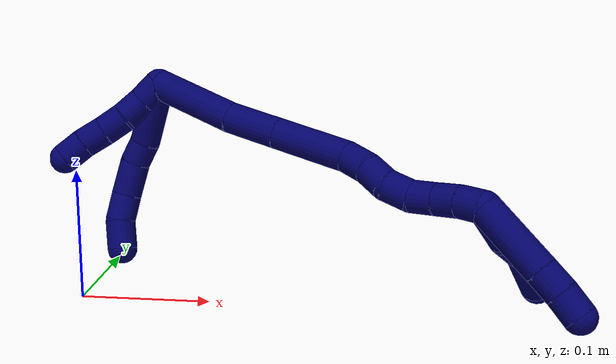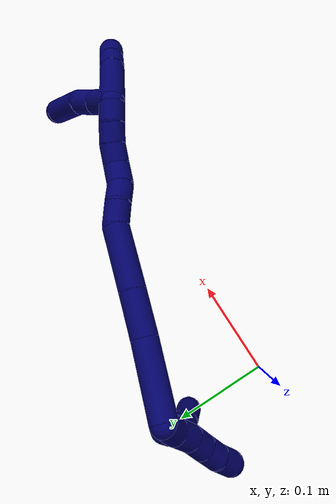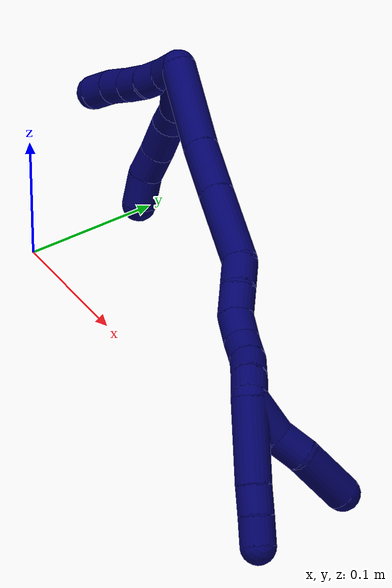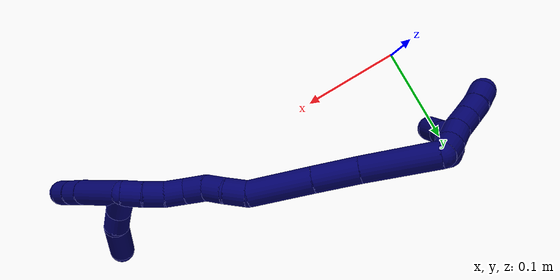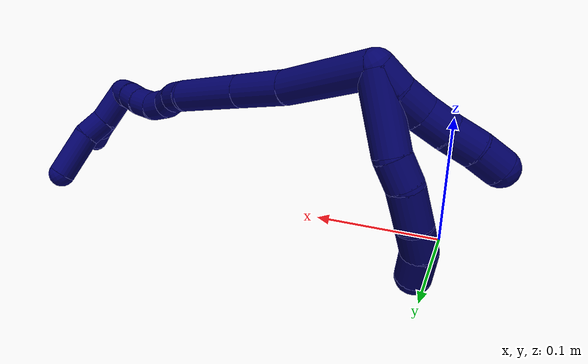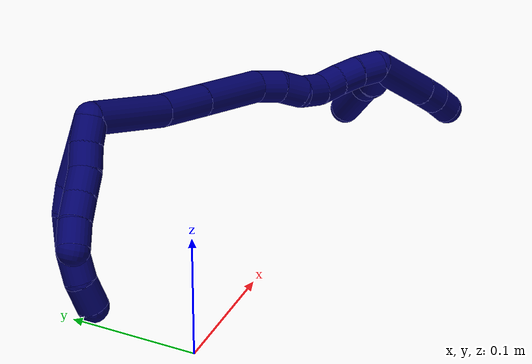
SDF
<sdf version="1.7">
 <world name="default">
  <model name="7">
   <static>0</static>
   <link name="7">
    <collision name="collision-cylinder-e_1_2_8">
     <pose>0.006094 0.005911 -0.025557 -2.91431 0.228263 -1.57514</pose>
     <geometry><cylinder><radius>0.0125</radius><length>0.053861</length></cylinder></geometry>
     <surface>
      <friction><ode><mu>1.16</mu><mu2>1.16</mu2><slip1>0</slip1><slip2>0</slip2></ode></friction>
      <contact><ode><kp>1e+06</kp><kd>1</kd><max_vel>0</max_vel><min_depth>0.001</min_depth></ode></contact>
     </surface>
    </collision>
    <visual name="visual-cylinder-e_1_2_8">
     <pose>0.006094 0.005911 -0.025557 -2.91431 0.228263 -1.57514</pose>
     <geometry><cylinder><radius>0.0125</radius><length>0.053861</length></cylinder></geometry>
     <material><ambient>0.003922 0 0.403922 1</ambient></material>
    </visual>
    <collision name="collision-cylinder-e_2_8_9">
     <pose>0.013157 0.011729 -0.061262 3.13247 0.095204 2.95066</pose>
     <geometry><cylinder><radius>0.0125</radius><length>0.020389</length></cylinder></geometry>
     <surface>
      <friction><ode><mu>1.16</mu><mu2>1.16</mu2><slip1>0</slip1><slip2>0</slip2></ode></friction>
      <contact><ode><kp>1e+06</kp><kd>1</kd><max_vel>0</max_vel><min_depth>0.001</min_depth></ode></contact>
     </surface>
    </collision>
    <visual name="visual-cylinder-e_2_8_9">
     <pose>0.013157 0.011729 -0.061262 3.13247 0.095204 2.95066</pose>
     <geometry><cylinder><radius>0.0125</radius><length>0.020389</length></cylinder></geometry>
     <material><ambient>0.003922 0 0.403922 1</ambient></material>
    </visual>
    <collision name="collision-cylinder-e_3_9_10">
     <pose>0.018615 0.009688 -0.085083 3 0.314231 2.29984</pose>
     <geometry><cylinder><radius>0.0125</radius><length>0.029044</length></cylinder></geometry>
     <surface>
      <friction><ode><mu>1.16</mu><mu2>1.16</mu2><slip1>0</slip1><slip2>0</slip2></ode></friction>
      <contact><ode><kp>1e+06</kp><kd>1</kd><max_vel>0</max_vel><min_depth>0.001</min_depth></ode></contact>
     </surface>
    </collision>
    <visual name="visual-cylinder-e_3_9_10">
     <pose>0.018615 0.009688 -0.085083 3 0.314231 2.29984</pose>
     <geometry><cylinder><radius>0.0125</radius><length>0.029044</length></cylinder></geometry>
     <material><ambient>0.003922 0 0.403922 1</ambient></material>
    </visual>
    <collision name="collision-cylinder-e_4_10_11">
     <pose>0.027263 0.00456 -0.108748 2.83358 0.377638 1.77716</pose>
     <geometry><cylinder><radius>0.0125</radius><length>0.022561</length></cylinder></geometry>
     <surface>
      <friction><ode><mu>1.16</mu><mu2>1.16</mu2><slip1>0</slip1><slip2>0</slip2></ode></friction>
      <contact><ode><kp>1e+06</kp><kd>1</kd><max_vel>0</max_vel><min_depth>0.001</min_depth></ode></contact>
     </surface>
    </collision>
    <visual name="visual-cylinder-e_4_10_11">
     <pose>0.027263 0.00456 -0.108748 2.83358 0.377638 1.77716</pose>
     <geometry><cylinder><radius>0.0125</radius><length>0.022561</length></cylinder></geometry>
     <material><ambient>0.003922 0 0.403922 1</ambient></material>
    </visual>
    <collision name="collision-cylinder-e_5_11_6">
     <pose>0.039075 -0.001381 -0.12766 2.84135 0.68662 2.341</pose>
     <geometry><cylinder><radius>0.0125</radius><length>0.024145</length></cylinder></geometry>
     <surface>
      <friction><ode><mu>1.16</mu><mu2>1.16</mu2><slip1>0</slip1><slip2>0</slip2></ode></friction>
      <contact><ode><kp>1e+06</kp><kd>1</kd><max_vel>0</max_vel><min_depth>0.001</min_depth></ode></contact>
     </surface>
    </collision>
    <visual name="visual-cylinder-e_5_11_6">
     <pose>0.039075 -0.001381 -0.12766 2.84135 0.68662 2.341</pose>
     <geometry><cylinder><radius>0.0125</radius><length>0.024145</length></cylinder></geometry>
     <material><ambient>0.003922 0 0.403922 1</ambient></material>
    </visual>
    <collision name="collision-cylinder-e_1_2_12">
     <pose>-0.001913 -0.001334 -0.009724 3.00528 -0.192446 -1.91047</pose>
     <geometry><cylinder><radius>0.0125</radius><length>0.02</length></cylinder></geometry>
     <surface>
      <friction><ode><mu>1.16</mu><mu2>1.16</mu2><slip1>0</slip1><slip2>0</slip2></ode></friction>
      <contact><ode><kp>1e+06</kp><kd>1</kd><max_vel>0</max_vel><min_depth>0.001</min_depth></ode></contact>
     </surface>
    </collision>
    <visual name="visual-cylinder-e_1_2_12">
     <pose>-0.001913 -0.001334 -0.009724 3.00528 -0.192446 -1.91047</pose>
     <geometry><cylinder><radius>0.0125</radius><length>0.02</length></cylinder></geometry>
     <material><ambient>0.003922 0 0.403922 1</ambient></material>
    </visual>
    <collision name="collision-cylinder-e_2_12_13">
     <pose>-0.00624 -0.005866 -0.028611 2.80577 -0.243921 -1.25211</pose>
     <geometry><cylinder><radius>0.0125</radius><length>0.02</length></cylinder></geometry>
     <surface>
      <friction><ode><mu>1.16</mu><mu2>1.16</mu2><slip1>0</slip1><slip2>0</slip2></ode></friction>
      <contact><ode><kp>1e+06</kp><kd>1</kd><max_vel>0</max_vel><min_depth>0.001</min_depth></ode></contact>
     </surface>
    </collision>
    <visual name="visual-cylinder-e_2_12_13">
     <pose>-0.00624 -0.005866 -0.028611 2.80577 -0.243921 -1.25211</pose>
     <geometry><cylinder><radius>0.0125</radius><length>0.02</length></cylinder></geometry>
     <material><ambient>0.003922 0 0.403922 1</ambient></material>
    </visual>
    <collision name="collision-cylinder-e_3_13_14">
     <pose>-0.012367 -0.011177 -0.046814 2.91198 -0.380279 -2.06203</pose>
     <geometry><cylinder><radius>0.0125</radius><length>0.02</length></cylinder></geometry>
     <surface>
      <friction><ode><mu>1.16</mu><mu2>1.16</mu2><slip1>0</slip1><slip2>0</slip2></ode></friction>
      <contact><ode><kp>1e+06</kp><kd>1</kd><max_vel>0</max_vel><min_depth>0.001</min_depth></ode></contact>
     </surface>
    </collision>
    <visual name="visual-cylinder-e_3_13_14">
     <pose>-0.012367 -0.011177 -0.046814 2.91198 -0.380279 -2.06203</pose>
     <geometry><cylinder><radius>0.0125</radius><length>0.02</length></cylinder></geometry>
     <material><ambient>0.003922 0 0.403922 1</ambient></material>
    </visual>
    <collision name="collision-cylinder-e_4_14_15">
     <pose>-0.02022 -0.01581 -0.064603 2.86106 -0.426913 -1.98689</pose>
     <geometry><cylinder><radius>0.0125</radius><length>0.02</length></cylinder></geometry>
     <surface>
      <friction><ode><mu>1.16</mu><mu2>1.16</mu2><slip1>0</slip1><slip2>0</slip2></ode></friction>
      <contact><ode><kp>1e+06</kp><kd>1</kd><max_vel>0</max_vel><min_depth>0.001</min_depth></ode></contact>
     </surface>
    </collision>
    <visual name="visual-cylinder-e_4_14_15">
     <pose>-0.02022 -0.01581 -0.064603 2.86106 -0.426913 -1.98689</pose>
     <geometry><cylinder><radius>0.0125</radius><length>0.02</length></cylinder></geometry>
     <material><ambient>0.003922 0 0.403922 1</ambient></material>
    </visual>
    <collision name="collision-cylinder-e_5_15_5">
     <pose>-0.027206 -0.021458 -0.082412 2.80932 -0.288568 -1.42797</pose>
     <geometry><cylinder><radius>0.0125</radius><length>0.02</length></cylinder></geometry>
     <surface>
      <friction><ode><mu>1.16</mu><mu2>1.16</mu2><slip1>0</slip1><slip2>0</slip2></ode></friction>
      <contact><ode><kp>1e+06</kp><kd>1</kd><max_vel>0</max_vel><min_depth>0.001</min_depth></ode></contact>
     </surface>
    </collision>
    <visual name="visual-cylinder-e_5_15_5">
     <pose>-0.027206 -0.021458 -0.082412 2.80932 -0.288568 -1.42797</pose>
     <geometry><cylinder><radius>0.0125</radius><length>0.02</length></cylinder></geometry>
     <material><ambient>0.003922 0 0.403922 1</ambient></material>
    </visual>
    <collision name="collision-cylinder-e_1_2_16">
     <pose>0.034044 -0.00814 0.007121 0.852065 1.26319 0.641103</pose>
     <geometry><cylinder><radius>0.0125</radius><length>0.071441</length></cylinder></geometry>
     <surface>
      <friction><ode><mu>1.16</mu><mu2>1.16</mu2><slip1>0</slip1><slip2>0</slip2></ode></friction>
      <contact><ode><kp>1e+06</kp><kd>1</kd><max_vel>0</max_vel><min_depth>0.001</min_depth></ode></contact>
     </surface>
    </collision>
    <visual name="visual-cylinder-e_1_2_16">
     <pose>0.034044 -0.00814 0.007121 0.852065 1.26319 0.641103</pose>
     <geometry><cylinder><radius>0.0125</radius><length>0.071441</length></cylinder></geometry>
     <material><ambient>0.003922 0 0.403922 1</ambient></material>
    </visual>
    <collision name="collision-cylinder-e_2_16_17">
     <pose>0.088021 -0.021086 0.020701 0.639739 1.18695 0.439692</pose>
     <geometry><cylinder><radius>0.0125</radius><length>0.042995</length></cylinder></geometry>
     <surface>
      <friction><ode><mu>1.16</mu><mu2>1.16</mu2><slip1>0</slip1><slip2>0</slip2></ode></friction>
      <contact><ode><kp>1e+06</kp><kd>1</kd><max_vel>0</max_vel><min_depth>0.001</min_depth></ode></contact>
     </surface>
    </collision>
    <visual name="visual-cylinder-e_2_16_17">
     <pose>0.088021 -0.021086 0.020701 0.639739 1.18695 0.439692</pose>
     <geometry><cylinder><radius>0.0125</radius><length>0.042995</length></cylinder></geometry>
     <material><ambient>0.003922 0 0.403922 1</ambient></material>
    </visual>
    <collision name="collision-cylinder-e_3_17_18">
     <pose>0.136431 -0.032514 0.036404 0.621571 1.19089 0.428519</pose>
     <geometry><cylinder><radius>0.0125</radius><length>0.061327</length></cylinder></geometry>
     <surface>
      <friction><ode><mu>1.16</mu><mu2>1.16</mu2><slip1>0</slip1><slip2>0</slip2></ode></friction>
      <contact><ode><kp>1e+06</kp><kd>1</kd><max_vel>0</max_vel><min_depth>0.001</min_depth></ode></contact>
     </surface>
    </collision>
    <visual name="visual-cylinder-e_3_17_18">
     <pose>0.136431 -0.032514 0.036404 0.621571 1.19089 0.428519</pose>
     <geometry><cylinder><radius>0.0125</radius><length>0.061327</length></cylinder></geometry>
     <material><ambient>0.003922 0 0.403922 1</ambient></material>
    </visual>
    <collision name="collision-cylinder-e_4_18_19">
     <pose>0.174247 -0.044777 0.04749 1.25514 1.00474 0.758464</pose>
     <geometry><cylinder><radius>0.0125</radius><length>0.02213</length></cylinder></geometry>
     <surface>
      <friction><ode><mu>1.16</mu><mu2>1.16</mu2><slip1>0</slip1><slip2>0</slip2></ode></friction>
      <contact><ode><kp>1e+06</kp><kd>1</kd><max_vel>0</max_vel><min_depth>0.001</min_depth></ode></contact>
     </surface>
    </collision>
    <visual name="visual-cylinder-e_4_18_19">
     <pose>0.174247 -0.044777 0.04749 1.25514 1.00474 0.758464</pose>
     <geometry><cylinder><radius>0.0125</radius><length>0.02213</length></cylinder></geometry>
     <material><ambient>0.003922 0 0.403922 1</ambient></material>
    </visual>
    <collision name="collision-cylinder-e_5_19_20">
     <pose>0.192681 -0.05523 0.048978 1.64436 1.08303 1.14916</pose>
     <geometry><cylinder><radius>0.0125</radius><length>0.020592</length></cylinder></geometry>
     <surface>
      <friction><ode><mu>1.16</mu><mu2>1.16</mu2><slip1>0</slip1><slip2>0</slip2></ode></friction>
      <contact><ode><kp>1e+06</kp><kd>1</kd><max_vel>0</max_vel><min_depth>0.001</min_depth></ode></contact>
     </surface>
    </collision>
    <visual name="visual-cylinder-e_5_19_20">
     <pose>0.192681 -0.05523 0.048978 1.64436 1.08303 1.14916</pose>
     <geometry><cylinder><radius>0.0125</radius><length>0.020592</length></cylinder></geometry>
     <material><ambient>0.003922 0 0.403922 1</ambient></material>
    </visual>
    <collision name="collision-cylinder-e_6_20_21">
     <pose>0.211828 -0.062765 0.050882 0.878495 1.23235 0.64242</pose>
     <geometry><cylinder><radius>0.0125</radius><length>0.021311</length></cylinder></geometry>
     <surface>
      <friction><ode><mu>1.16</mu><mu2>1.16</mu2><slip1>0</slip1><slip2>0</slip2></ode></friction>
      <contact><ode><kp>1e+06</kp><kd>1</kd><max_vel>0</max_vel><min_depth>0.001</min_depth></ode></contact>
     </surface>
    </collision>
    <visual name="visual-cylinder-e_6_20_21">
     <pose>0.211828 -0.062765 0.050882 0.878495 1.23235 0.64242</pose>
     <geometry><cylinder><radius>0.0125</radius><length>0.021311</length></cylinder></geometry>
     <material><ambient>0.003922 0 0.403922 1</ambient></material>
    </visual>
    <collision name="collision-cylinder-e_7_21_22">
     <pose>0.230022 -0.068609 0.058158 0.556372 0.943074 0.289214</pose>
     <geometry><cylinder><radius>0.0125</radius><length>0.020122</length></cylinder></geometry>
     <surface>
      <friction><ode><mu>1.16</mu><mu2>1.16</mu2><slip1>0</slip1><slip2>0</slip2></ode></friction>
      <contact><ode><kp>1e+06</kp><kd>1</kd><max_vel>0</max_vel><min_depth>0.001</min_depth></ode></contact>
     </surface>
    </collision>
    <visual name="visual-cylinder-e_7_21_22">
     <pose>0.230022 -0.068609 0.058158 0.556372 0.943074 0.289214</pose>
     <geometry><cylinder><radius>0.0125</radius><length>0.020122</length></cylinder></geometry>
     <material><ambient>0.003922 0 0.403922 1</ambient></material>
    </visual>
    <collision name="collision-cylinder-e_8_22_23">
     <pose>0.245493 -0.076347 0.068188 0.744371 0.821573 0.336851</pose>
     <geometry><cylinder><radius>0.0125</radius><length>0.020013</length></cylinder></geometry>
     <surface>
      <friction><ode><mu>1.16</mu><mu2>1.16</mu2><slip1>0</slip1><slip2>0</slip2></ode></friction>
      <contact><ode><kp>1e+06</kp><kd>1</kd><max_vel>0</max_vel><min_depth>0.001</min_depth></ode></contact>
     </surface>
    </collision>
    <visual name="visual-cylinder-e_8_22_23">
     <pose>0.245493 -0.076347 0.068188 0.744371 0.821573 0.336851</pose>
     <geometry><cylinder><radius>0.0125</radius><length>0.020013</length></cylinder></geometry>
     <material><ambient>0.003922 0 0.403922 1</ambient></material>
    </visual>
    <collision name="collision-cylinder-e_9_23_1">
     <pose>0.260623 -0.085872 0.077163 0.891586 0.891045 0.44873</pose>
     <geometry><cylinder><radius>0.0125</radius><length>0.020068</length></cylinder></geometry>
     <surface>
      <friction><ode><mu>1.16</mu><mu2>1.16</mu2><slip1>0</slip1><slip2>0</slip2></ode></friction>
      <contact><ode><kp>1e+06</kp><kd>1</kd><max_vel>0</max_vel><min_depth>0.001</min_depth></ode></contact>
     </surface>
    </collision>
    <visual name="visual-cylinder-e_9_23_1">
     <pose>0.260623 -0.085872 0.077163 0.891586 0.891045 0.44873</pose>
     <geometry><cylinder><radius>0.0125</radius><length>0.020068</length></cylinder></geometry>
     <material><ambient>0.003922 0 0.403922 1</ambient></material>
    </visual>
    <collision name="collision-cylinder-e_1_1_24">
     <pose>0.281747 -0.083719 0.07447 -2.32664 0.941205 -1.73439</pose>
     <geometry><cylinder><radius>0.0125</radius><length>0.032959</length></cylinder></geometry>
     <surface>
      <friction><ode><mu>1.16</mu><mu2>1.16</mu2><slip1>0</slip1><slip2>0</slip2></ode></friction>
      <contact><ode><kp>1e+06</kp><kd>1</kd><max_vel>0</max_vel><min_depth>0.001</min_depth></ode></contact>
     </surface>
    </collision>
    <visual name="visual-cylinder-e_1_1_24">
     <pose>0.281747 -0.083719 0.07447 -2.32664 0.941205 -1.73439</pose>
     <geometry><cylinder><radius>0.0125</radius><length>0.032959</length></cylinder></geometry>
     <material><ambient>0.003922 0 0.403922 1</ambient></material>
    </visual>
    <collision name="collision-cylinder-e_2_24_25">
     <pose>0.303641 -0.069492 0.065727 -1.85417 0.854493 -1.0908</pose>
     <geometry><cylinder><radius>0.0125</radius><length>0.022735</length></cylinder></geometry>
     <surface>
      <friction><ode><mu>1.16</mu><mu2>1.16</mu2><slip1>0</slip1><slip2>0</slip2></ode></friction>
      <contact><ode><kp>1e+06</kp><kd>1</kd><max_vel>0</max_vel><min_depth>0.001</min_depth></ode></contact>
     </surface>
    </collision>
    <visual name="visual-cylinder-e_2_24_25">
     <pose>0.303641 -0.069492 0.065727 -1.85417 0.854493 -1.0908</pose>
     <geometry><cylinder><radius>0.0125</radius><length>0.022735</length></cylinder></geometry>
     <material><ambient>0.003922 0 0.403922 1</ambient></material>
    </visual>
    <collision name="collision-cylinder-e_3_25_4">
     <pose>0.326436 -0.048819 0.05334 -2.22231 0.697041 -1.26642</pose>
     <geometry><cylinder><radius>0.0125</radius><length>0.044306</length></cylinder></geometry>
     <surface>
      <friction><ode><mu>1.16</mu><mu2>1.16</mu2><slip1>0</slip1><slip2>0</slip2></ode></friction>
      <contact><ode><kp>1e+06</kp><kd>1</kd><max_vel>0</max_vel><min_depth>0.001</min_depth></ode></contact>
     </surface>
    </collision>
    <visual name="visual-cylinder-e_3_25_4">
     <pose>0.326436 -0.048819 0.05334 -2.22231 0.697041 -1.26642</pose>
     <geometry><cylinder><radius>0.0125</radius><length>0.044306</length></cylinder></geometry>
     <material><ambient>0.003922 0 0.403922 1</ambient></material>
    </visual>
    <collision name="collision-cylinder-e_1_1_26">
     <pose>0.296264 -0.099107 0.075241 2.18599 1.2197 1.866</pose>
     <geometry><cylinder><radius>0.0125</radius><length>0.059291</length></cylinder></geometry>
     <surface>
      <friction><ode><mu>1.16</mu><mu2>1.16</mu2><slip1>0</slip1><slip2>0</slip2></ode></friction>
      <contact><ode><kp>1e+06</kp><kd>1</kd><max_vel>0</max_vel><min_depth>0.001</min_depth></ode></contact>
     </surface>
    </collision>
    <visual name="visual-cylinder-e_1_1_26">
     <pose>0.296264 -0.099107 0.075241 2.18599 1.2197 1.866</pose>
     <geometry><cylinder><radius>0.0125</radius><length>0.059291</length></cylinder></geometry>
     <material><ambient>0.003922 0 0.403922 1</ambient></material>
    </visual>
    <collision name="collision-cylinder-e_2_26_27">
     <pose>0.333793 -0.109891 0.067213 2.28808 1.24622 2.01329</pose>
     <geometry><cylinder><radius>0.0125</radius><length>0.020452</length></cylinder></geometry>
     <surface>
      <friction><ode><mu>1.16</mu><mu2>1.16</mu2><slip1>0</slip1><slip2>0</slip2></ode></friction>
      <contact><ode><kp>1e+06</kp><kd>1</kd><max_vel>0</max_vel><min_depth>0.001</min_depth></ode></contact>
     </surface>
    </collision>
    <visual name="visual-cylinder-e_2_26_27">
     <pose>0.333793 -0.109891 0.067213 2.28808 1.24622 2.01329</pose>
     <geometry><cylinder><radius>0.0125</radius><length>0.020452</length></cylinder></geometry>
     <material><ambient>0.003922 0 0.403922 1</ambient></material>
    </visual>
    <collision name="collision-cylinder-e_3_27_3">
     <pose>0.352916 -0.114616 0.062153 2.48079 1.19743 2.20996</pose>
     <geometry><cylinder><radius>0.0125</radius><length>0.020257</length></cylinder></geometry>
     <surface>
      <friction><ode><mu>1.16</mu><mu2>1.16</mu2><slip1>0</slip1><slip2>0</slip2></ode></friction>
      <contact><ode><kp>1e+06</kp><kd>1</kd><max_vel>0</max_vel><min_depth>0.001</min_depth></ode></contact>
     </surface>
    </collision>
    <visual name="visual-cylinder-e_3_27_3">
     <pose>0.352916 -0.114616 0.062153 2.48079 1.19743 2.20996</pose>
     <geometry><cylinder><radius>0.0125</radius><length>0.020257</length></cylinder></geometry>
     <material><ambient>0.003922 0 0.403922 1</ambient></material>
    </visual>
    <collision name="collision-sphere-3">
     <pose>0.362347 -0.116883 0.059236 0 -0 0</pose>
     <geometry><sphere><radius>0.0125</radius></sphere></geometry>
     <surface>
      <friction><ode><mu>1.16</mu><mu2>1.16</mu2><slip1>0</slip1><slip2>0</slip2></ode></friction>
      <contact><ode><kp>1e+06</kp><kd>1</kd><max_vel>0</max_vel><min_depth>0.001</min_depth></ode></contact>
     </surface>
    </collision>
    <visual name="visual-sphere-3">
     <pose>0.362347 -0.116883 0.059236 0 -0 0</pose>
     <geometry><sphere><radius>0.0125</radius></sphere></geometry>
     <material><ambient>0.003922 0 0.403922 1</ambient></material>
    </visual>
    <collision name="collision-sphere-27">
     <pose>0.343485 -0.112348 0.065069 0 -0 0</pose>
     <geometry><sphere><radius>0.0125</radius></sphere></geometry>
     <surface>
      <friction><ode><mu>1.16</mu><mu2>1.16</mu2><slip1>0</slip1><slip2>0</slip2></ode></friction>
      <contact><ode><kp>1e+06</kp><kd>1</kd><max_vel>0</max_vel><min_depth>0.001</min_depth></ode></contact>
     </surface>
    </collision>
    <visual name="visual-sphere-27">
     <pose>0.343485 -0.112348 0.065069 0 -0 0</pose>
     <geometry><sphere><radius>0.0125</radius></sphere></geometry>
     <material><ambient>0.003922 0 0.403922 1</ambient></material>
    </visual>
    <collision name="collision-sphere-26">
     <pose>0.324102 -0.107433 0.069357 0 -0 0</pose>
     <geometry><sphere><radius>0.0125</radius></sphere></geometry>
     <surface>
      <friction><ode><mu>1.16</mu><mu2>1.16</mu2><slip1>0</slip1><slip2>0</slip2></ode></friction>
      <contact><ode><kp>1e+06</kp><kd>1</kd><max_vel>0</max_vel><min_depth>0.001</min_depth></ode></contact>
     </surface>
    </collision>
    <visual name="visual-sphere-26">
     <pose>0.324102 -0.107433 0.069357 0 -0 0</pose>
     <geometry><sphere><radius>0.0125</radius></sphere></geometry>
     <material><ambient>0.003922 0 0.403922 1</ambient></material>
    </visual>
    <collision name="collision-sphere-4">
     <pose>0.340657 -0.035313 0.04304 0 -0 0</pose>
     <geometry><sphere><radius>0.0125</radius></sphere></geometry>
     <surface>
      <friction><ode><mu>1.16</mu><mu2>1.16</mu2><slip1>0</slip1><slip2>0</slip2></ode></friction>
      <contact><ode><kp>1e+06</kp><kd>1</kd><max_vel>0</max_vel><min_depth>0.001</min_depth></ode></contact>
     </surface>
    </collision>
    <visual name="visual-sphere-4">
     <pose>0.340657 -0.035313 0.04304 0 -0 0</pose>
     <geometry><sphere><radius>0.0125</radius></sphere></geometry>
     <material><ambient>0.003922 0 0.403922 1</ambient></material>
    </visual>
    <collision name="collision-sphere-25">
     <pose>0.312215 -0.062325 0.06364 0 -0 0</pose>
     <geometry><sphere><radius>0.0125</radius></sphere></geometry>
     <surface>
      <friction><ode><mu>1.16</mu><mu2>1.16</mu2><slip1>0</slip1><slip2>0</slip2></ode></friction>
      <contact><ode><kp>1e+06</kp><kd>1</kd><max_vel>0</max_vel><min_depth>0.001</min_depth></ode></contact>
     </surface>
    </collision>
    <visual name="visual-sphere-25">
     <pose>0.312215 -0.062325 0.06364 0 -0 0</pose>
     <geometry><sphere><radius>0.0125</radius></sphere></geometry>
     <material><ambient>0.003922 0 0.403922 1</ambient></material>
    </visual>
    <collision name="collision-sphere-24">
     <pose>0.295067 -0.076658 0.067814 0 -0 0</pose>
     <geometry><sphere><radius>0.0125</radius></sphere></geometry>
     <surface>
      <friction><ode><mu>1.16</mu><mu2>1.16</mu2><slip1>0</slip1><slip2>0</slip2></ode></friction>
      <contact><ode><kp>1e+06</kp><kd>1</kd><max_vel>0</max_vel><min_depth>0.001</min_depth></ode></contact>
     </surface>
    </collision>
    <visual name="visual-sphere-24">
     <pose>0.295067 -0.076658 0.067814 0 -0 0</pose>
     <geometry><sphere><radius>0.0125</radius></sphere></geometry>
     <material><ambient>0.003922 0 0.403922 1</ambient></material>
    </visual>
    <collision name="collision-sphere-1">
     <pose>0.268427 -0.09078 0.081125 0 -0 0</pose>
     <geometry><sphere><radius>0.0125</radius></sphere></geometry>
     <surface>
      <friction><ode><mu>1.16</mu><mu2>1.16</mu2><slip1>0</slip1><slip2>0</slip2></ode></friction>
      <contact><ode><kp>1e+06</kp><kd>1</kd><max_vel>0</max_vel><min_depth>0.001</min_depth></ode></contact>
     </surface>
    </collision>
    <visual name="visual-sphere-1">
     <pose>0.268427 -0.09078 0.081125 0 -0 0</pose>
     <geometry><sphere><radius>0.0125</radius></sphere></geometry>
     <material><ambient>0.003922 0 0.403922 1</ambient></material>
    </visual>
    <collision name="collision-sphere-23">
     <pose>0.25282 -0.080965 0.073201 0 -0 0</pose>
     <geometry><sphere><radius>0.0125</radius></sphere></geometry>
     <surface>
      <friction><ode><mu>1.16</mu><mu2>1.16</mu2><slip1>0</slip1><slip2>0</slip2></ode></friction>
      <contact><ode><kp>1e+06</kp><kd>1</kd><max_vel>0</max_vel><min_depth>0.001</min_depth></ode></contact>
     </surface>
    </collision>
    <visual name="visual-sphere-23">
     <pose>0.25282 -0.080965 0.073201 0 -0 0</pose>
     <geometry><sphere><radius>0.0125</radius></sphere></geometry>
     <material><ambient>0.003922 0 0.403922 1</ambient></material>
    </visual>
    <collision name="collision-sphere-22">
     <pose>0.238166 -0.07173 0.063175 0 -0 0</pose>
     <geometry><sphere><radius>0.0125</radius></sphere></geometry>
     <surface>
      <friction><ode><mu>1.16</mu><mu2>1.16</mu2><slip1>0</slip1><slip2>0</slip2></ode></friction>
      <contact><ode><kp>1e+06</kp><kd>1</kd><max_vel>0</max_vel><min_depth>0.001</min_depth></ode></contact>
     </surface>
    </collision>
    <visual name="visual-sphere-22">
     <pose>0.238166 -0.07173 0.063175 0 -0 0</pose>
     <geometry><sphere><radius>0.0125</radius></sphere></geometry>
     <material><ambient>0.003922 0 0.403922 1</ambient></material>
    </visual>
    <collision name="collision-sphere-21">
     <pose>0.221879 -0.065489 0.05314 0 -0 0</pose>
     <geometry><sphere><radius>0.0125</radius></sphere></geometry>
     <surface>
      <friction><ode><mu>1.16</mu><mu2>1.16</mu2><slip1>0</slip1><slip2>0</slip2></ode></friction>
      <contact><ode><kp>1e+06</kp><kd>1</kd><max_vel>0</max_vel><min_depth>0.001</min_depth></ode></contact>
     </surface>
    </collision>
    <visual name="visual-sphere-21">
     <pose>0.221879 -0.065489 0.05314 0 -0 0</pose>
     <geometry><sphere><radius>0.0125</radius></sphere></geometry>
     <material><ambient>0.003922 0 0.403922 1</ambient></material>
    </visual>
    <collision name="collision-sphere-6">
     <pose>0.046728 -0.004142 -0.136579 0 -0 0</pose>
     <geometry><sphere><radius>0.0125</radius></sphere></geometry>
     <surface>
      <friction><ode><mu>1.16</mu><mu2>1.16</mu2><slip1>0</slip1><slip2>0</slip2></ode></friction>
      <contact><ode><kp>1e+06</kp><kd>1</kd><max_vel>0</max_vel><min_depth>0.001</min_depth></ode></contact>
     </surface>
    </collision>
    <visual name="visual-sphere-6">
     <pose>0.046728 -0.004142 -0.136579 0 -0 0</pose>
     <geometry><sphere><radius>0.0125</radius></sphere></geometry>
     <material><ambient>0.003922 0 0.403922 1</ambient></material>
    </visual>
    <collision name="collision-sphere-11">
     <pose>0.031422 0.001381 -0.11874 0 -0 0</pose>
     <geometry><sphere><radius>0.0125</radius></sphere></geometry>
     <surface>
      <friction><ode><mu>1.16</mu><mu2>1.16</mu2><slip1>0</slip1><slip2>0</slip2></ode></friction>
      <contact><ode><kp>1e+06</kp><kd>1</kd><max_vel>0</max_vel><min_depth>0.001</min_depth></ode></contact>
     </surface>
    </collision>
    <visual name="visual-sphere-11">
     <pose>0.031422 0.001381 -0.11874 0 -0 0</pose>
     <geometry><sphere><radius>0.0125</radius></sphere></geometry>
     <material><ambient>0.003922 0 0.403922 1</ambient></material>
    </visual>
    <collision name="collision-sphere-10">
     <pose>0.023103 0.007739 -0.098756 0 -0 0</pose>
     <geometry><sphere><radius>0.0125</radius></sphere></geometry>
     <surface>
      <friction><ode><mu>1.16</mu><mu2>1.16</mu2><slip1>0</slip1><slip2>0</slip2></ode></friction>
      <contact><ode><kp>1e+06</kp><kd>1</kd><max_vel>0</max_vel><min_depth>0.001</min_depth></ode></contact>
     </surface>
    </collision>
    <visual name="visual-sphere-10">
     <pose>0.023103 0.007739 -0.098756 0 -0 0</pose>
     <geometry><sphere><radius>0.0125</radius></sphere></geometry>
     <material><ambient>0.003922 0 0.403922 1</ambient></material>
    </visual>
    <collision name="collision-sphere-9">
     <pose>0.014126 0.011637 -0.07141 0 -0 0</pose>
     <geometry><sphere><radius>0.0125</radius></sphere></geometry>
     <surface>
      <friction><ode><mu>1.16</mu><mu2>1.16</mu2><slip1>0</slip1><slip2>0</slip2></ode></friction>
      <contact><ode><kp>1e+06</kp><kd>1</kd><max_vel>0</max_vel><min_depth>0.001</min_depth></ode></contact>
     </surface>
    </collision>
    <visual name="visual-sphere-9">
     <pose>0.014126 0.011637 -0.07141 0 -0 0</pose>
     <geometry><sphere><radius>0.0125</radius></sphere></geometry>
     <material><ambient>0.003922 0 0.403922 1</ambient></material>
    </visual>
    <collision name="collision-sphere-2">
     <geometry><sphere><radius>0.0125</radius></sphere></geometry>
     <surface>
      <friction><ode><mu>1.16</mu><mu2>1.16</mu2><slip1>0</slip1><slip2>0</slip2></ode></friction>
      <contact><ode><kp>1e+06</kp><kd>1</kd><max_vel>0</max_vel><min_depth>0.001</min_depth></ode></contact>
     </surface>
    </collision>
    <visual name="visual-sphere-2">
     <geometry><sphere><radius>0.0125</radius></sphere></geometry>
     <material><ambient>0.003922 0 0.403922 1</ambient></material>
    </visual>
    <collision name="collision-sphere-19">
     <pose>0.183586 -0.050418 0.049333 0 -0 0</pose>
     <geometry><sphere><radius>0.0125</radius></sphere></geometry>
     <surface>
      <friction><ode><mu>1.16</mu><mu2>1.16</mu2><slip1>0</slip1><slip2>0</slip2></ode></friction>
      <contact><ode><kp>1e+06</kp><kd>1</kd><max_vel>0</max_vel><min_depth>0.001</min_depth></ode></contact>
     </surface>
    </collision>
    <visual name="visual-sphere-19">
     <pose>0.183586 -0.050418 0.049333 0 -0 0</pose>
     <geometry><sphere><radius>0.0125</radius></sphere></geometry>
     <material><ambient>0.003922 0 0.403922 1</ambient></material>
    </visual>
    <collision name="collision-sphere-8">
     <pose>0.012188 0.011822 -0.051114 0 -0 0</pose>
     <geometry><sphere><radius>0.0125</radius></sphere></geometry>
     <surface>
      <friction><ode><mu>1.16</mu><mu2>1.16</mu2><slip1>0</slip1><slip2>0</slip2></ode></friction>
      <contact><ode><kp>1e+06</kp><kd>1</kd><max_vel>0</max_vel><min_depth>0.001</min_depth></ode></contact>
     </surface>
    </collision>
    <visual name="visual-sphere-8">
     <pose>0.012188 0.011822 -0.051114 0 -0 0</pose>
     <geometry><sphere><radius>0.0125</radius></sphere></geometry>
     <material><ambient>0.003922 0 0.403922 1</ambient></material>
    </visual>
    <collision name="collision-sphere-12">
     <pose>-0.003825 -0.002668 -0.019449 0 -0 0</pose>
     <geometry><sphere><radius>0.0125</radius></sphere></geometry>
     <surface>
      <friction><ode><mu>1.16</mu><mu2>1.16</mu2><slip1>0</slip1><slip2>0</slip2></ode></friction>
      <contact><ode><kp>1e+06</kp><kd>1</kd><max_vel>0</max_vel><min_depth>0.001</min_depth></ode></contact>
     </surface>
    </collision>
    <visual name="visual-sphere-12">
     <pose>-0.003825 -0.002668 -0.019449 0 -0 0</pose>
     <geometry><sphere><radius>0.0125</radius></sphere></geometry>
     <material><ambient>0.003922 0 0.403922 1</ambient></material>
    </visual>
    <collision name="collision-sphere-13">
     <pose>-0.008655 -0.009063 -0.037773 0 -0 0</pose>
     <geometry><sphere><radius>0.0125</radius></sphere></geometry>
     <surface>
      <friction><ode><mu>1.16</mu><mu2>1.16</mu2><slip1>0</slip1><slip2>0</slip2></ode></friction>
      <contact><ode><kp>1e+06</kp><kd>1</kd><max_vel>0</max_vel><min_depth>0.001</min_depth></ode></contact>
     </surface>
    </collision>
    <visual name="visual-sphere-13">
     <pose>-0.008655 -0.009063 -0.037773 0 -0 0</pose>
     <geometry><sphere><radius>0.0125</radius></sphere></geometry>
     <material><ambient>0.003922 0 0.403922 1</ambient></material>
    </visual>
    <collision name="collision-sphere-14">
     <pose>-0.016079 -0.01329 -0.055856 0 -0 0</pose>
     <geometry><sphere><radius>0.0125</radius></sphere></geometry>
     <surface>
      <friction><ode><mu>1.16</mu><mu2>1.16</mu2><slip1>0</slip1><slip2>0</slip2></ode></friction>
      <contact><ode><kp>1e+06</kp><kd>1</kd><max_vel>0</max_vel><min_depth>0.001</min_depth></ode></contact>
     </surface>
    </collision>
    <visual name="visual-sphere-14">
     <pose>-0.016079 -0.01329 -0.055856 0 -0 0</pose>
     <geometry><sphere><radius>0.0125</radius></sphere></geometry>
     <material><ambient>0.003922 0 0.403922 1</ambient></material>
    </visual>
    <collision name="collision-sphere-15">
     <pose>-0.02436 -0.018331 -0.07335 0 -0 0</pose>
     <geometry><sphere><radius>0.0125</radius></sphere></geometry>
     <surface>
      <friction><ode><mu>1.16</mu><mu2>1.16</mu2><slip1>0</slip1><slip2>0</slip2></ode></friction>
      <contact><ode><kp>1e+06</kp><kd>1</kd><max_vel>0</max_vel><min_depth>0.001</min_depth></ode></contact>
     </surface>
    </collision>
    <visual name="visual-sphere-15">
     <pose>-0.02436 -0.018331 -0.07335 0 -0 0</pose>
     <geometry><sphere><radius>0.0125</radius></sphere></geometry>
     <material><ambient>0.003922 0 0.403922 1</ambient></material>
    </visual>
    <collision name="collision-sphere-5">
     <pose>-0.030052 -0.024585 -0.091474 0 -0 0</pose>
     <geometry><sphere><radius>0.0125</radius></sphere></geometry>
     <surface>
      <friction><ode><mu>1.16</mu><mu2>1.16</mu2><slip1>0</slip1><slip2>0</slip2></ode></friction>
      <contact><ode><kp>1e+06</kp><kd>1</kd><max_vel>0</max_vel><min_depth>0.001</min_depth></ode></contact>
     </surface>
    </collision>
    <visual name="visual-sphere-5">
     <pose>-0.030052 -0.024585 -0.091474 0 -0 0</pose>
     <geometry><sphere><radius>0.0125</radius></sphere></geometry>
     <material><ambient>0.003922 0 0.403922 1</ambient></material>
    </visual>
    <collision name="collision-sphere-16">
     <pose>0.068087 -0.01628 0.014242 0 -0 0</pose>
     <geometry><sphere><radius>0.0125</radius></sphere></geometry>
     <surface>
      <friction><ode><mu>1.16</mu><mu2>1.16</mu2><slip1>0</slip1><slip2>0</slip2></ode></friction>
      <contact><ode><kp>1e+06</kp><kd>1</kd><max_vel>0</max_vel><min_depth>0.001</min_depth></ode></contact>
     </surface>
    </collision>
    <visual name="visual-sphere-16">
     <pose>0.068087 -0.01628 0.014242 0 -0 0</pose>
     <geometry><sphere><radius>0.0125</radius></sphere></geometry>
     <material><ambient>0.003922 0 0.403922 1</ambient></material>
    </visual>
    <collision name="collision-sphere-17">
     <pose>0.107954 -0.025892 0.02716 0 -0 0</pose>
     <geometry><sphere><radius>0.0125</radius></sphere></geometry>
     <surface>
      <friction><ode><mu>1.16</mu><mu2>1.16</mu2><slip1>0</slip1><slip2>0</slip2></ode></friction>
      <contact><ode><kp>1e+06</kp><kd>1</kd><max_vel>0</max_vel><min_depth>0.001</min_depth></ode></contact>
     </surface>
    </collision>
    <visual name="visual-sphere-17">
     <pose>0.107954 -0.025892 0.02716 0 -0 0</pose>
     <geometry><sphere><radius>0.0125</radius></sphere></geometry>
     <material><ambient>0.003922 0 0.403922 1</ambient></material>
    </visual>
    <collision name="collision-sphere-18">
     <pose>0.164908 -0.039135 0.045648 0 -0 0</pose>
     <geometry><sphere><radius>0.0125</radius></sphere></geometry>
     <surface>
      <friction><ode><mu>1.16</mu><mu2>1.16</mu2><slip1>0</slip1><slip2>0</slip2></ode></friction>
      <contact><ode><kp>1e+06</kp><kd>1</kd><max_vel>0</max_vel><min_depth>0.001</min_depth></ode></contact>
     </surface>
    </collision>
    <visual name="visual-sphere-18">
     <pose>0.164908 -0.039135 0.045648 0 -0 0</pose>
     <geometry><sphere><radius>0.0125</radius></sphere></geometry>
     <material><ambient>0.003922 0 0.403922 1</ambient></material>
    </visual>
    <collision name="collision-sphere-20">
     <pose>0.201777 -0.060042 0.048623 0 -0 0</pose>
     <geometry><sphere><radius>0.0125</radius></sphere></geometry>
     <surface>
      <friction><ode><mu>1.16</mu><mu2>1.16</mu2><slip1>0</slip1><slip2>0</slip2></ode></friction>
      <contact><ode><kp>1e+06</kp><kd>1</kd><max_vel>0</max_vel><min_depth>0.001</min_depth></ode></contact>
     </surface>
    </collision>
    <visual name="visual-sphere-20">
     <pose>0.201777 -0.060042 0.048623 0 -0 0</pose>
     <geometry><sphere><radius>0.0125</radius></sphere></geometry>
     <material><ambient>0.003922 0 0.403922 1</ambient></material>
    </visual>
    <inertial>
     <pose>0.140299 -0.038309 0.011986 0 -0 0</pose>
     <mass>0.75</mass>
     <inertia>
      <ixx>4.6e-05</ixx>
      <ixy>0</ixy>
      <ixz>0</ixz>
      <iyy>9.2e-05</iyy>
      <iyz>0</iyz>
      <izz>-0.000104</izz>
     </inertia>
    </inertial>
   </link>
   <pose>0.040271 0.100028 0.151369 -0.095266 0.553834 -0.121402</pose>
  </model>
 </world>
</sdf>
